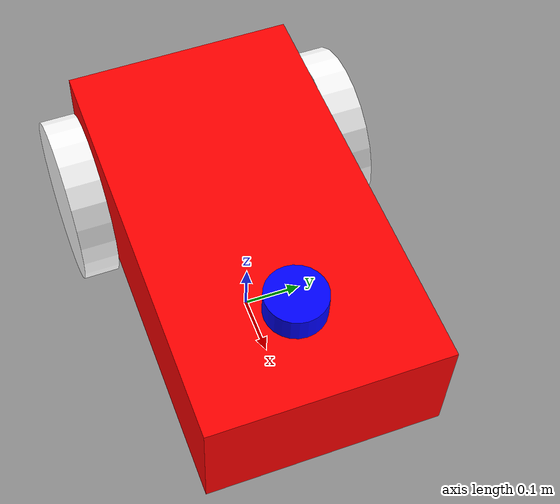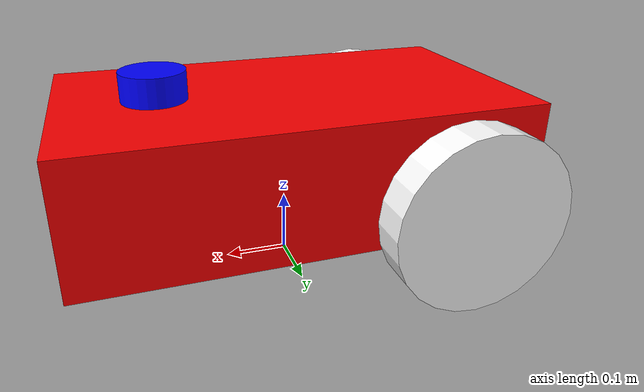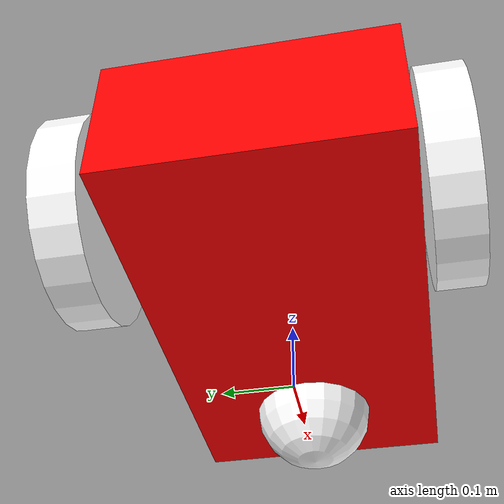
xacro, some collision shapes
<robot name="robot" xmlns:xacro="http://www.ros.org/wiki/xacro">
  <!-- Root link at ground projection (no inertia), helps RViz TFs and avoids KDL root-inertia warning -->
  <link name="base_footprint"/>
  <joint name="base_footprint_joint" type="fixed">
    <parent link="base_footprint"/>
    <child link="base_link"/>
    <!-- base_link is 0.19m above ground so wheel centers (z=-0.05) sit at 0.14m radius -->
    <origin xyz="0 0 0.19" rpy="0 0 0"/>
  </joint>

  <!-- Include component macros -->
  <!-- Use relative includes to ensure xacro can find macros both in source and installed locations -->
  <xacro:include filename="xacro/base.xacro"/>
  <xacro:include filename="xacro/drive_wheels.xacro"/>
  <xacro:include filename="xacro/caster_wheel.xacro"/>
  <xacro:include filename="xacro/lidar.xacro"/>

  <!-- Instantiate components -->
  <xacro:base/>
  <xacro:drive_wheels/>
  <xacro:caster_wheel/>
  <xacro:lidar/>

  <!-- Gazebo plugins (originally in the URDF) -->
  <gazebo>
    <plugin filename="gz-sim-diff-drive-system" name="gz::sim::systems::DiffDrive">
      <right_joint>drivewhl_r_joint</right_joint>
      <left_joint>drivewhl_l_joint</left_joint>
      <wheel_separation>0.12</wheel_separation>
      <wheel_radius>0.2</wheel_radius>
      <max_linear_acceleration>10</max_linear_acceleration>
      <odom_publish_frequency>10</odom_publish_frequency>
      <topic>cmd_vel</topic>
      <odom_topic>odom</odom_topic>
      <tf_topic>/model/robot/tf</tf_topic>
      <frame_id>odom</frame_id>
      <child_frame_id>base_footprint</child_frame_id>
    </plugin>
    <plugin filename="gz-sim-joint-state-publisher-system" name="gz::sim::systems::JointStatePublisher">
      <topic>joint_states</topic>
      <joint_name>drivewhl_r_joint</joint_name>
      <joint_name>drivewhl_l_joint</joint_name>
    </plugin>
    <plugin
      filename="gz-sim-sensors-system"
      name="gz::sim::systems::Sensors">
      <render_engine>ogre2</render_engine>
    </plugin>
  </gazebo>
  <gazebo reference="lidar_link">
    <sensor name="lidar_sensor" type="gpu_lidar">
      <gz_frame_id>lidar_link</gz_frame_id>
      <pose>0 0 0 0 0 0</pose>
      <topic>scan</topic>
      <update_rate>10</update_rate>
      <always_on>true</always_on>
      <visualize>true</visualize>
      <lidar>
        <scan>
          <horizontal>
            <samples>360</samples>
            <resolution>1.0</resolution>
            <min_angle>-3.14159265359</min_angle>
            <max_angle>3.14159265359</max_angle>
          </horizontal>
          <vertical>
            <samples>1</samples>
            <resolution>1.0</resolution>
            <min_angle>0</min_angle>
            <max_angle>0</max_angle>
          </vertical>
        </scan>
        <range>
          <min>0.08</min>
          <max>10.0</max>
          <resolution>0.01</resolution>
        </range>
        <noise>
          <type>gaussian</type>
          <mean>0.0</mean>
          <stddev>0.01</stddev>
        </noise>
      </lidar>
      <always_on>1</always_on>
      <visualize>1</visualize>
    </sensor>
  </gazebo>
</robot>

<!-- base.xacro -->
<robot xmlns:xacro="http://www.ros.org/wiki/xacro">
<xacro:macro name="base" params="">
  <link name="base_link">
    <visual>
      <origin rpy="1.5707963267949 0 3.141592654" xyz="0 0 -0.05"/>
      <geometry>
        <mesh filename="package://robot_description/meshes/robot_base.stl"/>
      </geometry>
      <material name="Red">
        <color rgba="1.0 0.0 0.0 1.0"/>
      </material>
    </visual>
    <collision>
      <geometry>
        <box size="0.7 0.39 0.2"/>
      </geometry>
    </collision>
    <inertial>
      <origin rpy="1.5707963267948966 0 1.5707963267948966" xyz="0 0 0"/>
      <mass value="40.0"/>
      <inertia ixx="1.7666666666666664" ixy="0.0" ixz="0.0" iyy="2.140333333333333" iyz="0.0" izz="0.6403333333333334"/>
    </inertial>
  </link>

  <gazebo reference="base_link">
    <material>Gazebo/Red</material>
  </gazebo>
</xacro:macro>
</robot>

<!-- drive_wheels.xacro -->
<robot xmlns:xacro="http://www.ros.org/wiki/xacro">
<xacro:macro name="drive_wheels" params="">
  <link name="drivewhl_l_link">
    <visual>
      <origin rpy="1.5707963267949 0 0" xyz="0 0 0"/>
      <geometry>
        <cylinder length="0.06" radius="0.14"/>
      </geometry>
      <material name="White">
        <color rgba="1.0 1.0 1.0 1.0"/>
      </material>
    </visual>
    <collision>
      <origin rpy="1.5707963267948966 0 0" xyz="0 0 0"/>
      <geometry>
        <cylinder length="0.06" radius="0.14"/>
      </geometry>
    </collision>
    <inertial>
      <origin rpy="1.5707963267948966 0 0" xyz="0 0 0"/>
      <mass value="110.5"/>
      <inertia ixx="0.5746000000000001" ixy="0" ixz="0" iyy="0.5746000000000001" iyz="0" izz="1.0829000000000002"/>
    </inertial>
  </link>

  <joint name="drivewhl_l_joint" type="continuous">
    <parent link="base_link"/>
    <child link="drivewhl_l_link"/>
    <origin rpy="0 0 0" xyz="-0.221 0.23 -0.05"/>
    <limit effort="30" lower="-3.1415" upper="3.1415" velocity="5.0"/>
    <axis xyz="0 1 0"/>
  </joint>

  <link name="drivewhl_r_link">
    <visual>
      <origin rpy="1.5707963267949 0 0" xyz="0 0 0"/>
      <geometry>
        <cylinder length="0.06" radius="0.14"/>
      </geometry>
      <material name="White">
        <color rgba="1.0 1.0 1.0 1.0"/>
      </material>
    </visual>
    <collision>
      <origin rpy="1.5707963267948966 0 0" xyz="0 0 0"/>
      <geometry>
        <cylinder length="0.06" radius="0.14"/>
      </geometry>
    </collision>
    <inertial>
      <origin rpy="1.5707963267948966 0 0" xyz="0 0 0"/>
      <mass value="110.5"/>
      <inertia ixx="0.5746000000000001" ixy="0" ixz="0" iyy="0.5746000000000001" iyz="0" izz="1.0829000000000002"/>
    </inertial>
  </link>

  <joint name="drivewhl_r_joint" type="continuous">
    <parent link="base_link"/>
    <child link="drivewhl_r_link"/>
    <origin rpy="0 0 0" xyz="-0.221 -0.23 -0.05"/>
    <limit effort="30" lower="-3.1415" upper="3.1415" velocity="5.0"/>
    <axis xyz="0 1 0"/>
  </joint>
</xacro:macro>
</robot>

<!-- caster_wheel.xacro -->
<robot xmlns:xacro="http://www.ros.org/wiki/xacro">
<xacro:macro name="caster_wheel" params="">
  <link name="front_caster">
    <visual>
      <geometry>
        <sphere radius="0.09"/>
      </geometry>
      <material name="White">
        <color rgba="1.0 1.0 1.0 1.0"/>
      </material>
    </visual>
    <collision>
      <origin rpy="0 0 0" xyz="0 0 0"/>
      <geometry>
        <sphere radius="0.09"/>
      </geometry>
    </collision>
    <inertial>
      <mass value="10.05"/>
      <inertia ixx="0.032562" ixy="0.0" ixz="0.0" iyy="0.032562" iyz="0.0" izz="0.032562"/>
    </inertial>
  </link>

  <gazebo reference="front_caster">
    <mu1>0.01</mu1>
    <mu2>0.01</mu2>
    <material>Gazebo/White</material>
  </gazebo>

  <joint name="caster_joint" type="fixed">
    <parent link="base_link"/>
    <child link="front_caster"/>
    <origin rpy="0 0 0" xyz="0.217 0.0 -0.1"/>
  </joint>
</xacro:macro>
</robot>

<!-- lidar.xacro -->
<robot xmlns:xacro="http://www.ros.org/wiki/xacro">
<xacro:macro name="lidar" params="">
  <link name="lidar_link">
    <visual>
      <geometry>
        <cylinder length="0.05" radius="0.05"/>
      </geometry>
      <material name="Blue">
        <color rgba="0.0 0.0 1.0 1.0"/>
      </material>
    </visual>
    <collision>
      <geometry>
        <cylinder length="0.05" radius="0.05"/>
      </geometry>
    </collision>
    <inertial>
      <mass value="0.1"/>
      <inertia ixx="0.0001" ixy="0.0" ixz="0.0" iyy="0.0001" iyz="0.0" izz="0.0001"/>
    </inertial>
  </link>

  <joint name="lidar_joint" type="fixed">
    <parent link="base_link"/>
    <child link="lidar_link"/>
    <origin rpy="0 0 0" xyz="0.2 0.0 0.12"/>
  </joint>
</xacro:macro>
</robot>
